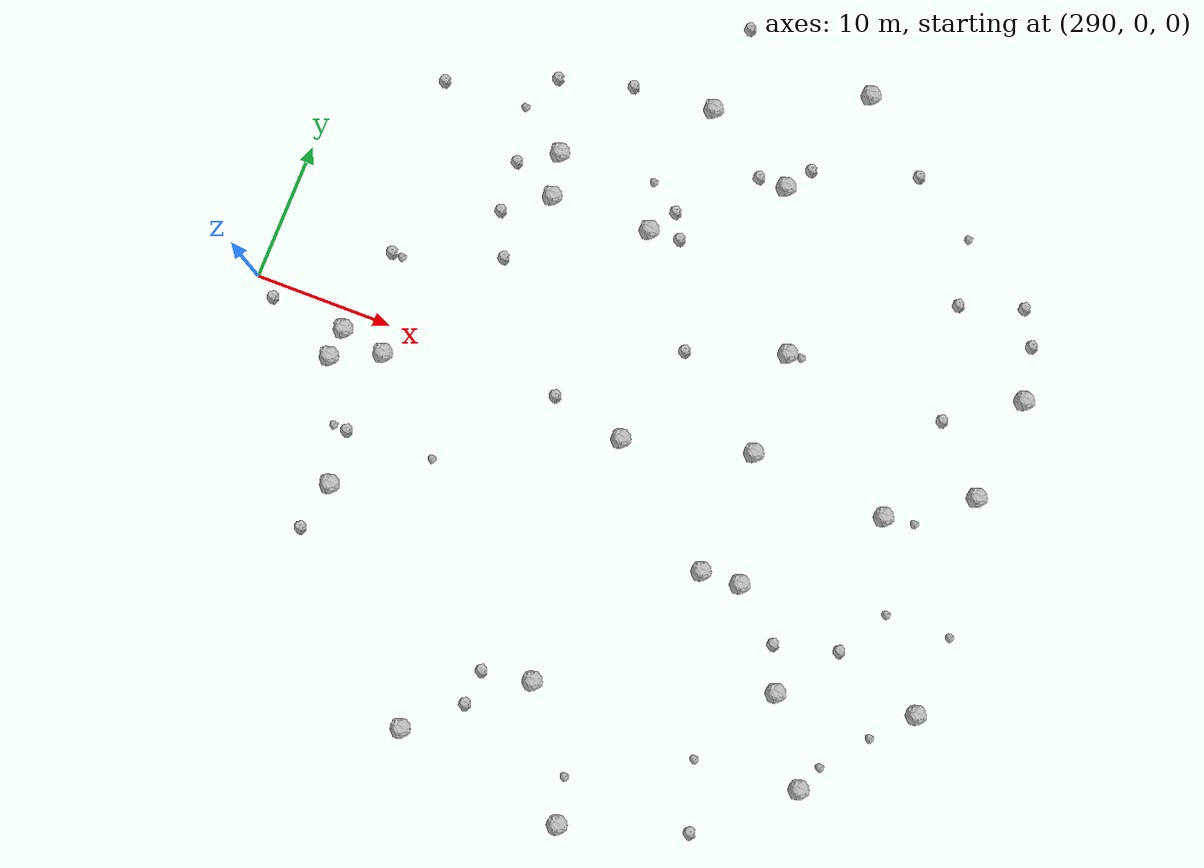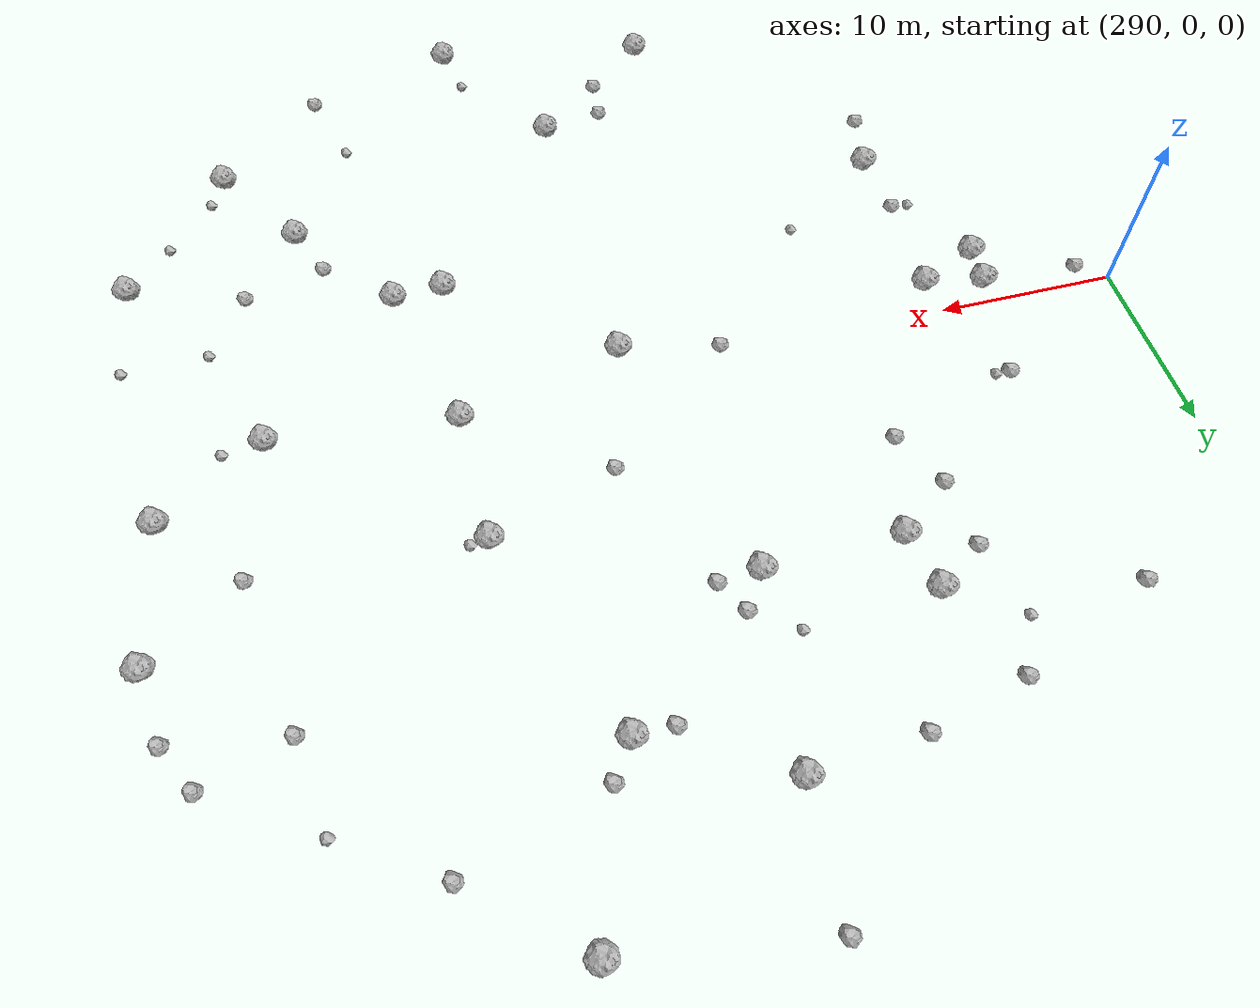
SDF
<sdf version="1.6">
 <world name="default">
  <include><uri>model://sun</uri></include>
  <model name="rock1_8_3">
   <include><uri>model://rock1</uri><pose>306.7791875264176 15.967547206748755 0.5 0 0 0</pose></include>
  </model>
  <model name="rock1_8_4">
   <include><uri>model://rock1</uri><pose>326.8794649051856 -8.371797090227261 0.5 0 0 0</pose></include>
  </model>
  <model name="rock1_8_5">
   <include><uri>model://rock1</uri><pose>318.30902036699416 -1.7207718680146016 0.5 0 0 0</pose></include>
  </model>
  <model name="rock1_8_6">
   <include><uri>model://rock1</uri><pose>334.63789756067894 -14.36630482432294 0.5 0 0 0</pose></include>
  </model>
  <model name="rock1_8_7">
   <include><uri>model://rock1</uri><pose>343.0059846755753 3.3433316137242315 0.5 0 0 0</pose></include>
  </model>
  <model name="rock1_8_8">
   <include><uri>model://rock1</uri><pose>315.8905135175254 22.939338101693068 0.5 0 0 0</pose></include>
  </model>
  <model name="rock1_8_9">
   <include><uri>model://rock1</uri><pose>323.8439156525797 -28.087835342104114 0.5 0 0 0</pose></include>
  </model>
  <model name="rock1_8_10">
   <include><uri>model://rock1</uri><pose>327.3597492312354 0.7012065421587508 0.5 0 0 0</pose></include>
  </model>
  <model name="rock1_8_11">
   <include><uri>model://rock1</uri><pose>326.1046557715065 27.939590053778076 0.5 0 0 0</pose></include>
  </model>
  <model name="rock1_8_12">
   <include><uri>model://rock1</uri><pose>329.6915793417436 -8.250306866354023 0.5 0 0 0</pose></include>
  </model>
  <model name="rock1_8_13">
   <include><uri>model://rock1</uri><pose>300.454710145544 -12.030546354828552 0.5 0 0 0</pose></include>
  </model>
  <model name="rock1_8_14">
   <include><uri>model://rock1</uri><pose>344.1800993059056 -12.30351989377909 0.5 0 0 0</pose></include>
  </model>
  <model name="rock1_8_15">
   <include><uri>model://rock1</uri><pose>343.80055511421887 10.976818652732845 0.5 0 0 0</pose></include>
  </model>
  <model name="rock1_8_16">
   <include><uri>model://rock1</uri><pose>327.12322010144925 8.148674779398064 0.5 0 0 0</pose></include>
  </model>
  <model name="rock1_8_17">
   <include><uri>model://rock1</uri><pose>300.4138545634263 -2.081331620512941 0.5 0 0 0</pose></include>
  </model>
  <model name="rock1_8_18">
   <include><uri>model://rock1</uri><pose>297.1502757717147 -1.471264786273931 0.5 0 0 0</pose></include>
  </model>
  <model name="rock1_8_19">
   <include><uri>model://rock1</uri><pose>311.4274242560913 -25.887439917331427 0.5 0 0 0</pose></include>
  </model>
  <model name="rock1_8_20">
   <include><uri>model://rock1</uri><pose>322.7631468494024 19.41911222359731 0.5 0 0 0</pose></include>
  </model>
  <model name="rock1_8_21">
   <include><uri>model://rock1</uri><pose>296.97048101047994 -3.6477108107582055 0.5 0 0 0</pose></include>
  </model>
  <model name="rock1_8_22">
   <include><uri>model://rock1</uri><pose>318.6987968523941 -19.63136989531759 0.5 0 0 0</pose></include>
  </model>
  <model name="rock1_8_23">
   <include><uri>model://rock1</uri><pose>307.4116437595124 12.820916872595092 0.5 0 0 0</pose></include>
  </model>
  <model name="rock1_8_24">
   <include><uri>model://rock1</uri><pose>314.7704182440104 12.978932244193118 0.5 0 0 0</pose></include>
  </model>
  <model name="rock1_8_25">
   <include><uri>model://rock1</uri><pose>337.40897960955306 -0.2650948379077782 0.5 0 0 0</pose></include>
  </model>
  <model name="rock1_8_26">
   <include><uri>model://rock1</uri><pose>338.4194196371716 -19.93598452611502 0.5 0 0 0</pose></include>
  </model>
  <model name="rock2_8_0">
   <include><uri>model://rock2</uri><pose>304.6278111462024 21.093210299235544 0.3 0 0 0</pose></include>
  </model>
  <model name="rock2_8_1">
   <include><uri>model://rock2</uri><pose>314.9078269534499 -22.75855395934007 0.3 0 0 0</pose></include>
  </model>
  <model name="rock2_8_2">
   <include><uri>model://rock2</uri><pose>304.35240537347346 10.547737855589745 0.3 0 0 0</pose></include>
  </model>
  <model name="rock2_8_3">
   <include><uri>model://rock2</uri><pose>341.6231901109679 17.251595170451218 0.3 0 0 0</pose></include>
  </model>
  <model name="rock2_8_4">
   <include><uri>model://rock2</uri><pose>309.9270942704149 22.481398528689738 0.3 0 0 0</pose></include>
  </model>
  <model name="rock2_8_5">
   <include><uri>model://rock2</uri><pose>320.23729393641173 5.741061283230408 0.3 0 0 0</pose></include>
  </model>
  <model name="rock2_8_6">
   <include><uri>model://rock2</uri><pose>291.5948874368775 -1.1183293006226336 0.3 0 0 0</pose></include>
  </model>
  <model name="rock2_8_7">
   <include><uri>model://rock2</uri><pose>337.7440245165283 -10.11314667624092 0.3 0 0 0</pose></include>
  </model>
  <model name="rock2_8_8">
   <include><uri>model://rock2</uri><pose>304.1201581698165 14.2953132200591 0.3 0 0 0</pose></include>
  </model>
  <model name="rock2_8_9">
   <include><uri>model://rock2</uri><pose>297.07396412782236 17.98504090395094 0.3 0 0 0</pose></include>
  </model>
  <model name="rock2_8_10">
   <include><uri>model://rock2</uri><pose>320.71072250885504 19.439165307077992 0.3 0 0 0</pose></include>
  </model>
  <model name="rock2_8_11">
   <include><uri>model://rock2</uri><pose>324.0136533477735 21.26431425700779 0.3 0 0 0</pose></include>
  </model>
  <model name="rock2_8_12">
   <include><uri>model://rock2</uri><pose>331.3746146436079 23.605022475028875 0.3 0 0 0</pose></include>
  </model>
  <model name="rock2_8_13">
   <include><uri>model://rock2</uri><pose>315.14210298073573 -20.23878274366367 0.3 0 0 0</pose></include>
  </model>
  <model name="rock2_8_14">
   <include><uri>model://rock2</uri><pose>317.01059672879387 13.15532028194788 0.3 0 0 0</pose></include>
  </model>
  <model name="rock2_8_15">
   <include><uri>model://rock2</uri><pose>338.89894248457364 7.595116853288097 0.3 0 0 0</pose></include>
  </model>
  <model name="rock2_8_16">
   <include><uri>model://rock2</uri><pose>333.2988554450813 -11.3008584393057 0.3 0 0 0</pose></include>
  </model>
  <model name="rock2_8_17">
   <include><uri>model://rock2</uri><pose>299.65954756316916 -15.544864234048125 0.3 0 0 0</pose></include>
  </model>
  <model name="rock2_8_18">
   <include><uri>model://rock2</uri><pose>343.0029613839278 14.84433840168112 0.3 0 0 0</pose></include>
  </model>
  <model name="rock2_8_19">
   <include><uri>model://rock2</uri><pose>332.4769924419776 -25.346076177228458 0.3 0 0 0</pose></include>
  </model>
  <model name="rock2_8_20">
   <include><uri>model://rock2</uri><pose>298.2548323796844 4.924034903427696 0.3 0 0 0</pose></include>
  </model>
  <model name="rock2_8_21">
   <include><uri>model://rock2</uri><pose>312.8670007962962 -0.5347815036702457 0.3 0 0 0</pose></include>
  </model>
  <model name="rock2_8_22">
   <include><uri>model://rock2</uri><pose>305.8129624945597 7.420590418994493 0.3 0 0 0</pose></include>
  </model>
  <model name="rock2_8_23">
   <include><uri>model://rock2</uri><pose>337.17927946983457 15.804486792743319 0.3 0 0 0</pose></include>
  </model>
  <model name="rock2_8_24">
   <include><uri>model://rock2</uri><pose>300.0767038572079 -8.075912479103966 0.3 0 0 0</pose></include>
  </model>
  <model name="rock2_8_25">
   <include><uri>model://rock2</uri><pose>316.2331402466149 29.534689070064516 0.3 0 0 0</pose></include>
  </model>
  <model name="rock2_8_26">
   <include><uri>model://rock2</uri><pose>316.0467385145692 14.908640885551854 0.3 0 0 0</pose></include>
  </model>
  <model name="rock3_8_0">
   <include><uri>model://rock3</uri><pose>339.5603875541161 0.04692556860627306 0.2 0 0 0</pose></include>
  </model>
  <model name="rock3_8_1">
   <include><uri>model://rock3</uri><pose>306.4197185080332 -7.807018879756086 0.2 0 0 0</pose></include>
  </model>
  <model name="rock3_8_2">
   <include><uri>model://rock3</uri><pose>299.05547429817557 -8.043799321240584 0.2 0 0 0</pose></include>
  </model>
  <model name="rock3_8_3">
   <include><uri>model://rock3</uri><pose>299.0292489526496 4.846866721387272 0.2 0 0 0</pose></include>
  </model>
  <model name="rock3_8_4">
   <include><uri>model://rock3</uri><pose>328.0750865711496 8.251396333916205 0.2 0 0 0</pose></include>
  </model>
  <model name="rock3_8_5">
   <include><uri>model://rock3</uri><pose>303.18840684831486 18.275346515812778 0.2 0 0 0</pose></include>
  </model>
  <model name="rock3_8_6">
   <include><uri>model://rock3</uri><pose>330.9784502252521 -20.61251334359428 0.2 0 0 0</pose></include>
  </model>
  <model name="rock3_8_7">
   <include><uri>model://rock3</uri><pose>336.21793255768057 20.54753785264966 0.2 0 0 0</pose></include>
  </model>
  <model name="rock3_8_8">
   <include><uri>model://rock3</uri><pose>339.23094498265334 -18.047698447940483 0.2 0 0 0</pose></include>
  </model>
  <model name="rock3_8_9">
   <include><uri>model://rock3</uri><pose>339.89214367537227 -6.5917323915530375 0.2 0 0 0</pose></include>
  </model>
  <model name="rock3_8_10">
   <include><uri>model://rock3</uri><pose>344.54081586348246 -6.490365883513778 0.2 0 0 0</pose></include>
  </model>
  <model name="rock3_8_11">
   <include><uri>model://rock3</uri><pose>313.78704806130463 16.412099352967978 0.2 0 0 0</pose></include>
  </model>
  <model name="rock3_8_12">
   <include><uri>model://rock3</uri><pose>323.0909254176793 -24.918243192393412 0.2 0 0 0</pose></include>
  </model>
  <model name="rock3_8_13">
   <include><uri>model://rock3</uri><pose>341.7326656393166 -14.965907838545016 0.2 0 0 0</pose></include>
  </model>
 </world>
</sdf>
